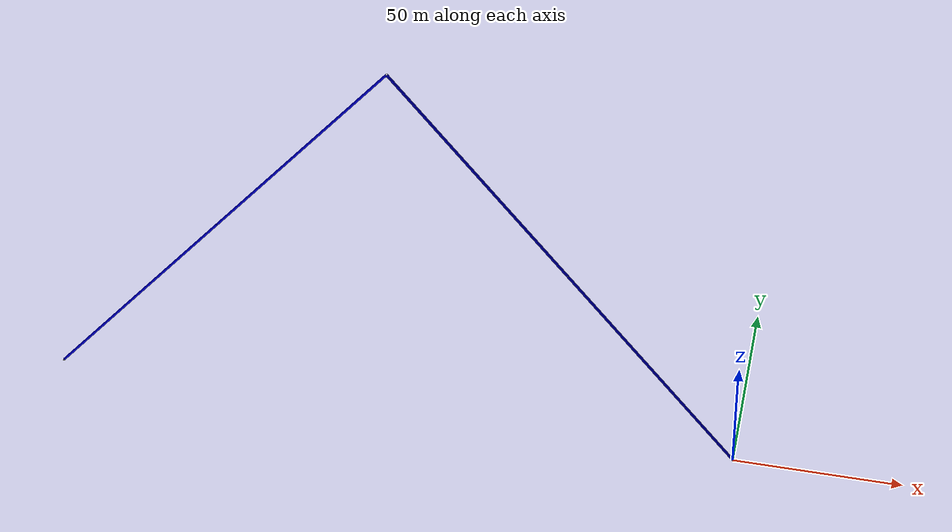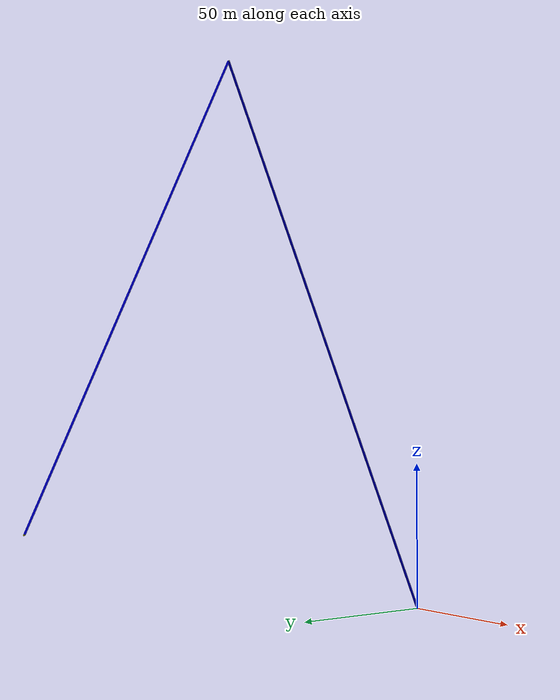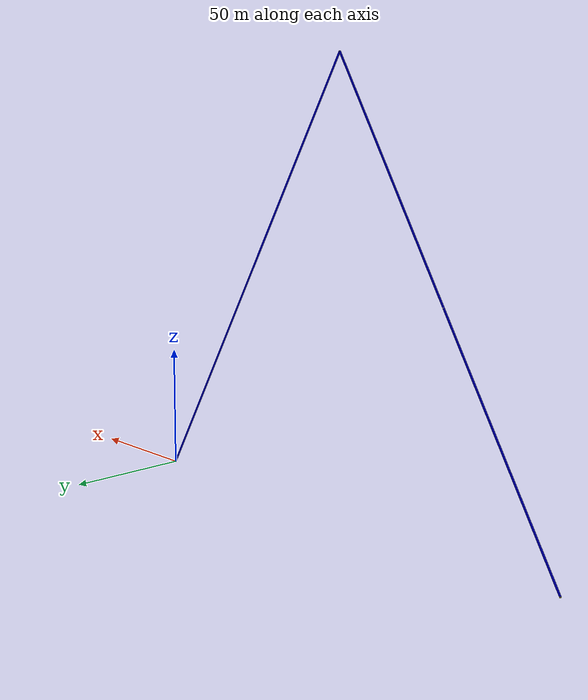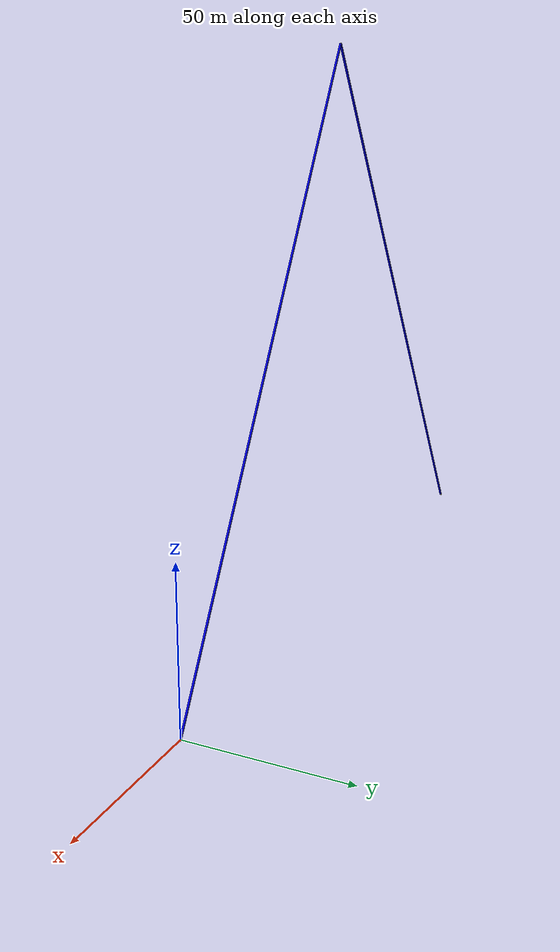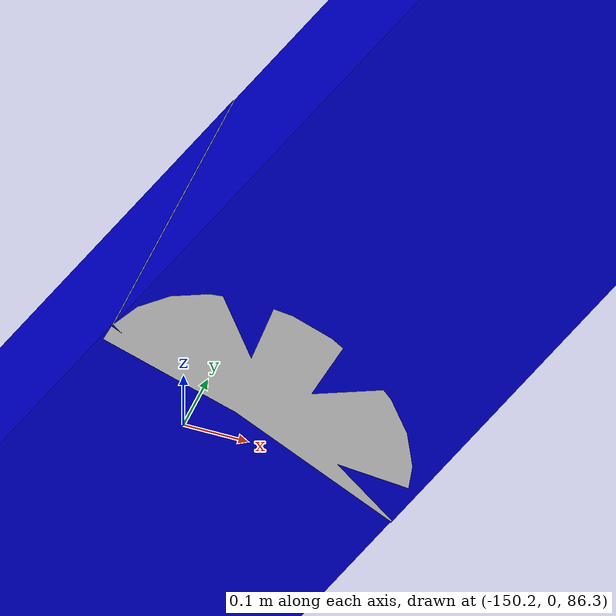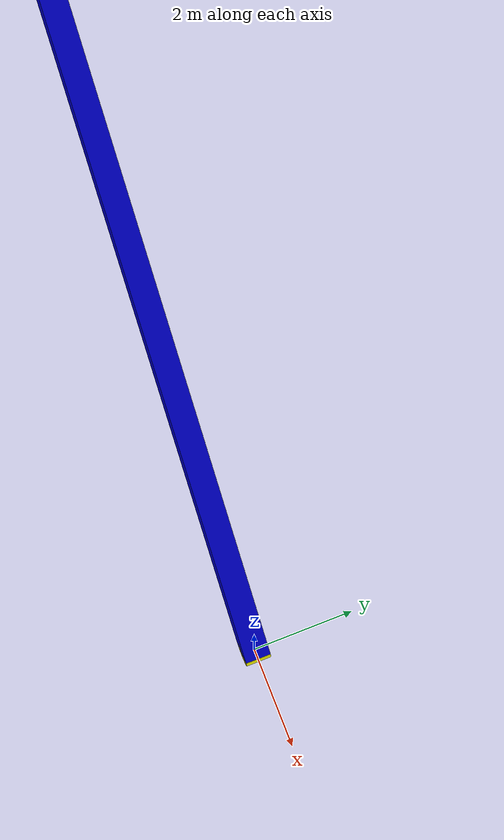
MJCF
<mujoco>
    <actuator>
        <motor gear="100000000" joint="hinge_1" name="pitch_motor" ctrlrange="-300 300" ctrllimited="true"/>
        <motor gear="100000000" joint="hinge_2" name="roll_motor" ctrlrange="-300 300" ctrllimited="true"/>
    </actuator>
    <asset>
        <material name="blue" rgba="0 0 1 1"/>
        <material name="white" rgba="1 1 1 1"/>
        <material name="yellow" rgba="1 1 0 1"/>
        <material name="red" rgba="1 0 0 1"/>
    </asset>
    <worldbody>

        <light diffuse=".5 .5 .5" pos="0 0 3" dir="0 0 -1" />
         <body name="j1" pos="0 0 0">
            <geom type="cylinder" size=".25 .25" pos="0 0 0" euler="90 0 0" material="yellow"/>
            <body name="link1" pos="0 0 0">
                <joint name="hinge_1" pos="0 0 0" axis="0 1 0" />
                <geom type="box" size=".25 .25 50" pos="-25 0 43.3" euler="0 -30 0" material="blue"/>
                <body name="j2" pos="-50 0 86.6">
                    <geom type="cylinder" size=".25 .25" pos="0 0 0" euler="90 0 0" material="white"/>
                    <body name="link2" pos="0 0 0">
                        <joint name="free1" pos="0 0 0" axis="0 1 0"/>
                        <geom type="box" size=".25 .25 50" pos="-25 0 43.3" euler="0 -30 0" material="blue"/>
                        <body name="end_effector" pos="-50 0 86.6">
                            <geom type="cylinder" size=".25 .25" pos="0 0 0" euler="90 0 0" material="white"/>
                            <body name="link3" pos="0 0 0">
                                <joint name="fn" pos="0 0 0" axis="0 1 0"/>
                                <geom type="box" size=".25 .25 50" pos="-25 0 -43.3" euler="0 30 0" material="blue"/>
                                <body name="j3" pos="-50 0 -86.6">
                                    <geom type="cylinder" size=".25 .25" pos="0 0 0" euler="90 0 0" material="white"/>
                                    <body name="link4" pos="0 0 0">
                                        <joint name="free2" pos="0 0 0" axis="0 1 0"/>
                                        <geom type="box" size=".25 .25 50" pos="-25 0 -43.3" euler="0 30 0" material="blue"/>
                                        <body name="j4" pos="-50 0 -86.6">
                                            <joint name="hinge_2" pos="0 0 0" axis="0 1 0"/>
                                            <geom type="cylinder" size=".25 .25" pos="0 0 0" euler="90 0 0" material="yellow"/>
                                        </body>
                                    </body>
                                </body>
                            </body>
                        </body>
                    </body>
                </body>
            </body>
        </body>
    </worldbody>
    <equality>
        <connect name="kinematic_link" active="true" body1="j4"  anchor="0 0 0" />
    </equality>
</mujoco>
